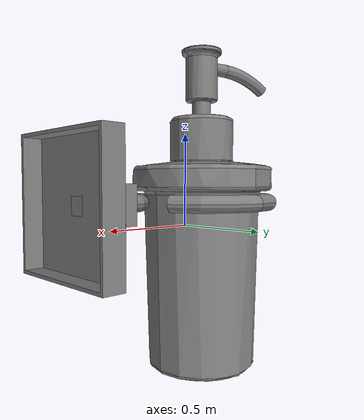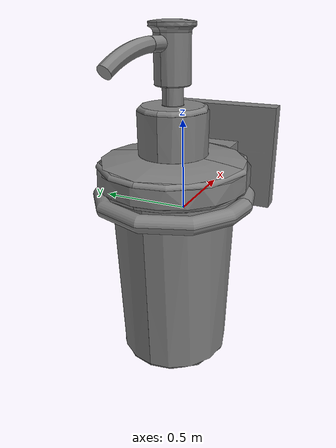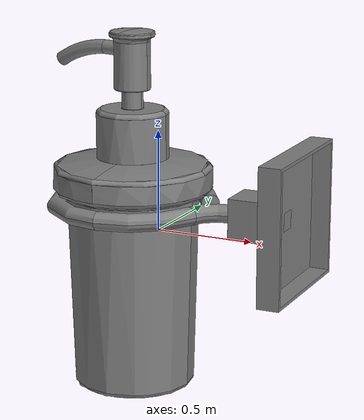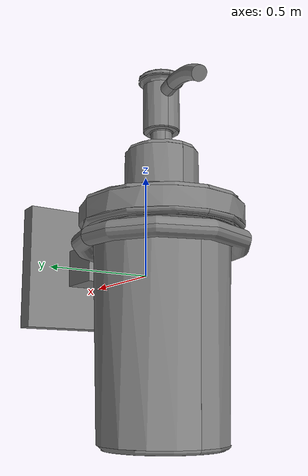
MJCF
<?xml version='1.0' encoding='UTF-8'?>
<mujoco model="partnet_d0718456507d8b0050da8b99982a3057">
  <compiler angle="radian"/>
  <asset>
    <mesh name="original_90" content_type="model/obj" file="textured_objs/original_90.obj"/>
    <mesh name="original_116" content_type="model/obj" file="textured_objs/original_116.obj"/>
    <mesh name="original_99" content_type="model/obj" file="textured_objs/original_99.obj"/>
    <mesh name="original_100" content_type="model/obj" file="textured_objs/original_100.obj"/>
    <mesh name="original_101" content_type="model/obj" file="textured_objs/original_101.obj"/>
    <mesh name="original_66" content_type="model/obj" file="textured_objs/original_66.obj"/>
    <mesh name="original_68" content_type="model/obj" file="textured_objs/original_68.obj"/>
    <mesh name="original_93" content_type="model/obj" file="textured_objs/original_93.obj"/>
    <mesh name="original_69" content_type="model/obj" file="textured_objs/original_69.obj"/>
    <mesh name="original_89" content_type="model/obj" file="textured_objs/original_89.obj"/>
    <mesh name="original_77" content_type="model/obj" file="textured_objs/original_77.obj"/>
    <mesh name="original_80" content_type="model/obj" file="textured_objs/original_80.obj"/>
    <mesh name="original_78" content_type="model/obj" file="textured_objs/original_78.obj"/>
    <mesh name="original_83" content_type="model/obj" file="textured_objs/original_83.obj"/>
    <mesh name="original_87" content_type="model/obj" file="textured_objs/original_87.obj"/>
    <mesh name="original_84" content_type="model/obj" file="textured_objs/original_84.obj"/>
    <mesh name="original_86" content_type="model/obj" file="textured_objs/original_86.obj"/>
    <mesh name="original_65" content_type="model/obj" file="textured_objs/original_65.obj"/>
    <mesh name="original_70" content_type="model/obj" file="textured_objs/original_70.obj"/>
    <mesh name="original_50" content_type="model/obj" file="textured_objs/original_50.obj"/>
    <mesh name="original_88" content_type="model/obj" file="textured_objs/original_88.obj"/>
    <mesh name="original_96" content_type="model/obj" file="textured_objs/original_96.obj"/>
    <mesh name="original_82" content_type="model/obj" file="textured_objs/original_82.obj"/>
    <mesh name="original_97" content_type="model/obj" file="textured_objs/original_97.obj"/>
    <mesh name="original_81" content_type="model/obj" file="textured_objs/original_81.obj"/>
    <mesh name="original_79" content_type="model/obj" file="textured_objs/original_79.obj"/>
    <mesh name="original_76" content_type="model/obj" file="textured_objs/original_76.obj"/>
    <mesh name="original_71" content_type="model/obj" file="textured_objs/original_71.obj"/>
    <mesh name="original_85" content_type="model/obj" file="textured_objs/original_85.obj"/>
    <mesh name="original_51" content_type="model/obj" file="textured_objs/original_51.obj"/>
    <mesh name="original_60" content_type="model/obj" file="textured_objs/original_60.obj"/>
    <mesh name="original_64" content_type="model/obj" file="textured_objs/original_64.obj"/>
    <mesh name="original_75" content_type="model/obj" file="textured_objs/original_75.obj"/>
    <mesh name="original_63" content_type="model/obj" file="textured_objs/original_63.obj"/>
    <mesh name="original_21" content_type="model/obj" file="textured_objs/original_21.obj"/>
    <mesh name="original_30" content_type="model/obj" file="textured_objs/original_30.obj"/>
    <mesh name="original_36" content_type="model/obj" file="textured_objs/original_36.obj"/>
    <mesh name="original_41" content_type="model/obj" file="textured_objs/original_41.obj"/>
    <mesh name="original_28" content_type="model/obj" file="textured_objs/original_28.obj"/>
    <mesh name="original_43" content_type="model/obj" file="textured_objs/original_43.obj"/>
    <mesh name="original_22" content_type="model/obj" file="textured_objs/original_22.obj"/>
    <mesh name="original_26" content_type="model/obj" file="textured_objs/original_26.obj"/>
    <mesh name="original_110" content_type="model/obj" file="textured_objs/original_110.obj"/>
    <mesh name="original_107" content_type="model/obj" file="textured_objs/original_107.obj"/>
    <mesh name="original_4" content_type="model/obj" file="textured_objs/original_4.obj"/>
    <mesh name="original_3" content_type="model/obj" file="textured_objs/original_3.obj"/>
    <mesh name="original_33" content_type="model/obj" file="textured_objs/original_33.obj"/>
    <mesh name="original_44" content_type="model/obj" file="textured_objs/original_44.obj"/>
    <mesh name="original_112" content_type="model/obj" file="textured_objs/original_112.obj"/>
    <mesh name="original_106" content_type="model/obj" file="textured_objs/original_106.obj"/>
    <mesh name="original_16" content_type="model/obj" file="textured_objs/original_16.obj"/>
    <mesh name="original_109" content_type="model/obj" file="textured_objs/original_109.obj"/>
    <mesh name="original_13" content_type="model/obj" file="textured_objs/original_13.obj"/>
    <mesh name="original_9" content_type="model/obj" file="textured_objs/original_9.obj"/>
    <mesh name="original_45" content_type="model/obj" file="textured_objs/original_45.obj"/>
    <mesh name="original_35" content_type="model/obj" file="textured_objs/original_35.obj"/>
    <mesh name="original_49" content_type="model/obj" file="textured_objs/original_49.obj"/>
    <mesh name="original_39" content_type="model/obj" file="textured_objs/original_39.obj"/>
    <mesh name="original_5" content_type="model/obj" file="textured_objs/original_5.obj"/>
    <mesh name="original_114" content_type="model/obj" file="textured_objs/original_114.obj"/>
    <mesh name="original_54" content_type="model/obj" file="textured_objs/original_54.obj"/>
    <mesh name="original_27" content_type="model/obj" file="textured_objs/original_27.obj"/>
    <mesh name="original_55" content_type="model/obj" file="textured_objs/original_55.obj"/>
    <mesh name="original_113" content_type="model/obj" file="textured_objs/original_113.obj"/>
    <mesh name="original_111" content_type="model/obj" file="textured_objs/original_111.obj"/>
    <mesh name="original_6" content_type="model/obj" file="textured_objs/original_6.obj"/>
    <mesh name="original_31" content_type="model/obj" file="textured_objs/original_31.obj"/>
    <mesh name="original_37" content_type="model/obj" file="textured_objs/original_37.obj"/>
    <mesh name="original_48" content_type="model/obj" file="textured_objs/original_48.obj"/>
    <mesh name="original_15" content_type="model/obj" file="textured_objs/original_15.obj"/>
    <mesh name="original_56" content_type="model/obj" file="textured_objs/original_56.obj"/>
    <mesh name="original_108" content_type="model/obj" file="textured_objs/original_108.obj"/>
    <mesh name="original_23" content_type="model/obj" file="textured_objs/original_23.obj"/>
    <mesh name="original_58" content_type="model/obj" file="textured_objs/original_58.obj"/>
    <mesh name="original_11" content_type="model/obj" file="textured_objs/original_11.obj"/>
    <mesh name="original_38" content_type="model/obj" file="textured_objs/original_38.obj"/>
    <mesh name="original_34" content_type="model/obj" file="textured_objs/original_34.obj"/>
    <mesh name="original_18" content_type="model/obj" file="textured_objs/original_18.obj"/>
    <mesh name="original_25" content_type="model/obj" file="textured_objs/original_25.obj"/>
    <mesh name="original_17" content_type="model/obj" file="textured_objs/original_17.obj"/>
    <mesh name="original_73" content_type="model/obj" file="textured_objs/original_73.obj"/>
    <mesh name="original_12" content_type="model/obj" file="textured_objs/original_12.obj"/>
    <mesh name="original_42" content_type="model/obj" file="textured_objs/original_42.obj"/>
    <mesh name="original_24" content_type="model/obj" file="textured_objs/original_24.obj"/>
    <mesh name="original_20" content_type="model/obj" file="textured_objs/original_20.obj"/>
    <mesh name="original_32" content_type="model/obj" file="textured_objs/original_32.obj"/>
    <mesh name="original_47" content_type="model/obj" file="textured_objs/original_47.obj"/>
    <mesh name="original_7" content_type="model/obj" file="textured_objs/original_7.obj"/>
    <mesh name="original_1" content_type="model/obj" file="textured_objs/original_1.obj"/>
    <mesh name="original_10" content_type="model/obj" file="textured_objs/original_10.obj"/>
    <mesh name="original_14" content_type="model/obj" file="textured_objs/original_14.obj"/>
    <mesh name="original_19" content_type="model/obj" file="textured_objs/original_19.obj"/>
    <mesh name="original_40" content_type="model/obj" file="textured_objs/original_40.obj"/>
    <mesh name="original_46" content_type="model/obj" file="textured_objs/original_46.obj"/>
    <mesh name="original_57" content_type="model/obj" file="textured_objs/original_57.obj"/>
  </asset>
  <worldbody>
    <body name="base">
      <body name="link_2" quat="0.5 0.5 -0.5 -0.5">
        <geom type="mesh" mesh="original_21"/>
        <geom type="mesh" mesh="original_30"/>
        <geom type="mesh" mesh="original_36"/>
        <geom type="mesh" mesh="original_41"/>
        <geom type="mesh" mesh="original_28"/>
        <geom type="mesh" mesh="original_43"/>
        <geom type="mesh" mesh="original_22"/>
        <geom type="mesh" mesh="original_26"/>
        <geom type="mesh" mesh="original_110"/>
        <geom type="mesh" mesh="original_107"/>
        <geom type="mesh" mesh="original_4"/>
        <geom type="mesh" mesh="original_3"/>
        <geom type="mesh" mesh="original_33"/>
        <geom type="mesh" mesh="original_44"/>
        <geom type="mesh" mesh="original_112"/>
        <geom type="mesh" mesh="original_106"/>
        <geom type="mesh" mesh="original_16"/>
        <geom type="mesh" mesh="original_109"/>
        <geom type="mesh" mesh="original_13"/>
        <geom type="mesh" mesh="original_9"/>
        <geom type="mesh" mesh="original_45"/>
        <geom type="mesh" mesh="original_35"/>
        <geom type="mesh" mesh="original_49"/>
        <geom type="mesh" mesh="original_39"/>
        <geom type="mesh" mesh="original_5"/>
        <geom type="mesh" mesh="original_114"/>
        <geom type="mesh" mesh="original_54"/>
        <geom type="mesh" mesh="original_27"/>
        <geom type="mesh" mesh="original_55"/>
        <geom type="mesh" mesh="original_113"/>
        <geom type="mesh" mesh="original_111"/>
        <geom type="mesh" mesh="original_6"/>
        <geom type="mesh" mesh="original_31"/>
        <geom type="mesh" mesh="original_37"/>
        <geom type="mesh" mesh="original_48"/>
        <geom type="mesh" mesh="original_15"/>
        <geom type="mesh" mesh="original_56"/>
        <geom type="mesh" mesh="original_108"/>
        <geom type="mesh" mesh="original_23"/>
        <geom type="mesh" mesh="original_58"/>
        <geom type="mesh" mesh="original_11"/>
        <geom type="mesh" mesh="original_38"/>
        <geom type="mesh" mesh="original_34"/>
        <geom type="mesh" mesh="original_18"/>
        <geom type="mesh" mesh="original_25"/>
        <geom type="mesh" mesh="original_17"/>
        <geom type="mesh" mesh="original_73"/>
        <geom type="mesh" mesh="original_12"/>
        <geom type="mesh" mesh="original_42"/>
        <geom type="mesh" mesh="original_24"/>
        <geom type="mesh" mesh="original_20"/>
        <geom type="mesh" mesh="original_32"/>
        <geom type="mesh" mesh="original_47"/>
        <geom type="mesh" mesh="original_7"/>
        <geom type="mesh" mesh="original_1"/>
        <geom type="mesh" mesh="original_10"/>
        <geom type="mesh" mesh="original_14"/>
        <geom type="mesh" mesh="original_19"/>
        <geom type="mesh" mesh="original_40"/>
        <geom type="mesh" mesh="original_46"/>
        <geom type="mesh" mesh="original_57"/>
        <body name="link_1_helper" pos="0.00797 0 0.135871">
          <inertial pos="0 0 0" mass="1e-06" diaginertia="1e-10 1e-10 1e-10"/>
          <joint name="joint_4" pos="0 0 0" axis="0 1 0" type="slide" range="0 0.02"/>
          <body name="link_1">
            <joint name="joint_1" pos="0 0 0" axis="0 -1 0"/>
            <geom pos="-0.00797 0 -0.135871" quat="1 0 0 0" type="mesh" mesh="original_51"/>
            <geom pos="-0.00797 0 -0.135871" type="mesh" mesh="original_60"/>
            <geom pos="-0.00797 0 -0.135871" quat="1 0 0 0" type="mesh" mesh="original_64"/>
            <geom pos="-0.00797 0 -0.135871" quat="1 0 0 0" type="mesh" mesh="original_75"/>
            <geom pos="-0.00797 0 -0.135871" quat="1 0 0 0" type="mesh" mesh="original_63"/>
            <body name="link_0_helper" pos="-2.91768e-07 0 -5.57452e-07">
              <inertial pos="0 0 0" mass="1e-06" diaginertia="1e-10 1e-10 1e-10"/>
              <joint name="joint_3" pos="0 0 0" axis="0 -1 0" type="slide" range="0 0.09"/>
              <body name="link_0">
                <joint name="joint_0" pos="0 0 0" axis="0 1 0"/>
                <geom pos="-0.00796971 0 -0.13587" type="mesh" mesh="original_90"/>
                <geom pos="-0.00796971 0 -0.13587" quat="1 0 0 0" type="mesh" mesh="original_116"/>
                <geom pos="-0.00796971 0 -0.13587" type="mesh" mesh="original_99"/>
                <geom pos="-0.00796971 0 -0.13587" type="mesh" mesh="original_100"/>
                <geom pos="-0.00796971 0 -0.13587" type="mesh" mesh="original_101"/>
                <geom pos="-0.00796971 0 -0.13587" quat="1 0 0 0" type="mesh" mesh="original_66"/>
                <geom pos="-0.00796971 0 -0.13587" type="mesh" mesh="original_68"/>
                <geom pos="-0.00796971 0 -0.13587" type="mesh" mesh="original_93"/>
                <geom pos="-0.00796971 0 -0.13587" quat="1 0 0 0" type="mesh" mesh="original_69"/>
                <geom pos="-0.00796971 0 -0.13587" quat="1 0 0 0" type="mesh" mesh="original_89"/>
                <geom pos="-0.00796971 0 -0.13587" quat="1 0 0 0" type="mesh" mesh="original_77"/>
                <geom pos="-0.00796971 0 -0.13587" quat="1 0 0 0" type="mesh" mesh="original_80"/>
                <geom pos="-0.00796971 0 -0.13587" quat="1 0 0 0" type="mesh" mesh="original_78"/>
                <geom pos="-0.00796971 0 -0.13587" quat="1 0 0 0" type="mesh" mesh="original_83"/>
                <geom pos="-0.00796971 0 -0.13587" quat="1 0 0 0" type="mesh" mesh="original_87"/>
                <geom pos="-0.00796971 0 -0.13587" quat="1 0 0 0" type="mesh" mesh="original_84"/>
                <geom pos="-0.00796971 0 -0.13587" quat="1 0 0 0" type="mesh" mesh="original_86"/>
                <geom pos="-0.00796971 0 -0.13587" quat="1 0 0 0" type="mesh" mesh="original_65"/>
                <geom pos="-0.00796971 0 -0.13587" type="mesh" mesh="original_70"/>
                <geom pos="-0.00796971 0 -0.13587" quat="1 0 0 0" type="mesh" mesh="original_50"/>
                <geom pos="-0.00796971 0 -0.13587" quat="1 0 0 0" type="mesh" mesh="original_88"/>
                <geom pos="-0.00796971 0 -0.13587" quat="1 0 0 0" type="mesh" mesh="original_96"/>
                <geom pos="-0.00796971 0 -0.13587" quat="1 0 0 0" type="mesh" mesh="original_82"/>
                <geom pos="-0.00796971 0 -0.13587" quat="1 0 0 0" type="mesh" mesh="original_97"/>
                <geom pos="-0.00796971 0 -0.13587" quat="1 0 0 0" type="mesh" mesh="original_81"/>
                <geom pos="-0.00796971 0 -0.13587" type="mesh" mesh="original_79"/>
                <geom pos="-0.00796971 0 -0.13587" quat="1 0 0 0" type="mesh" mesh="original_76"/>
                <geom pos="-0.00796971 0 -0.13587" quat="1 0 0 0" type="mesh" mesh="original_71"/>
                <geom pos="-0.00796971 0 -0.13587" quat="1 0 0 0" type="mesh" mesh="original_85"/>
              </body>
            </body>
          </body>
        </body>
      </body>
    </body>
  </worldbody>
</mujoco>
